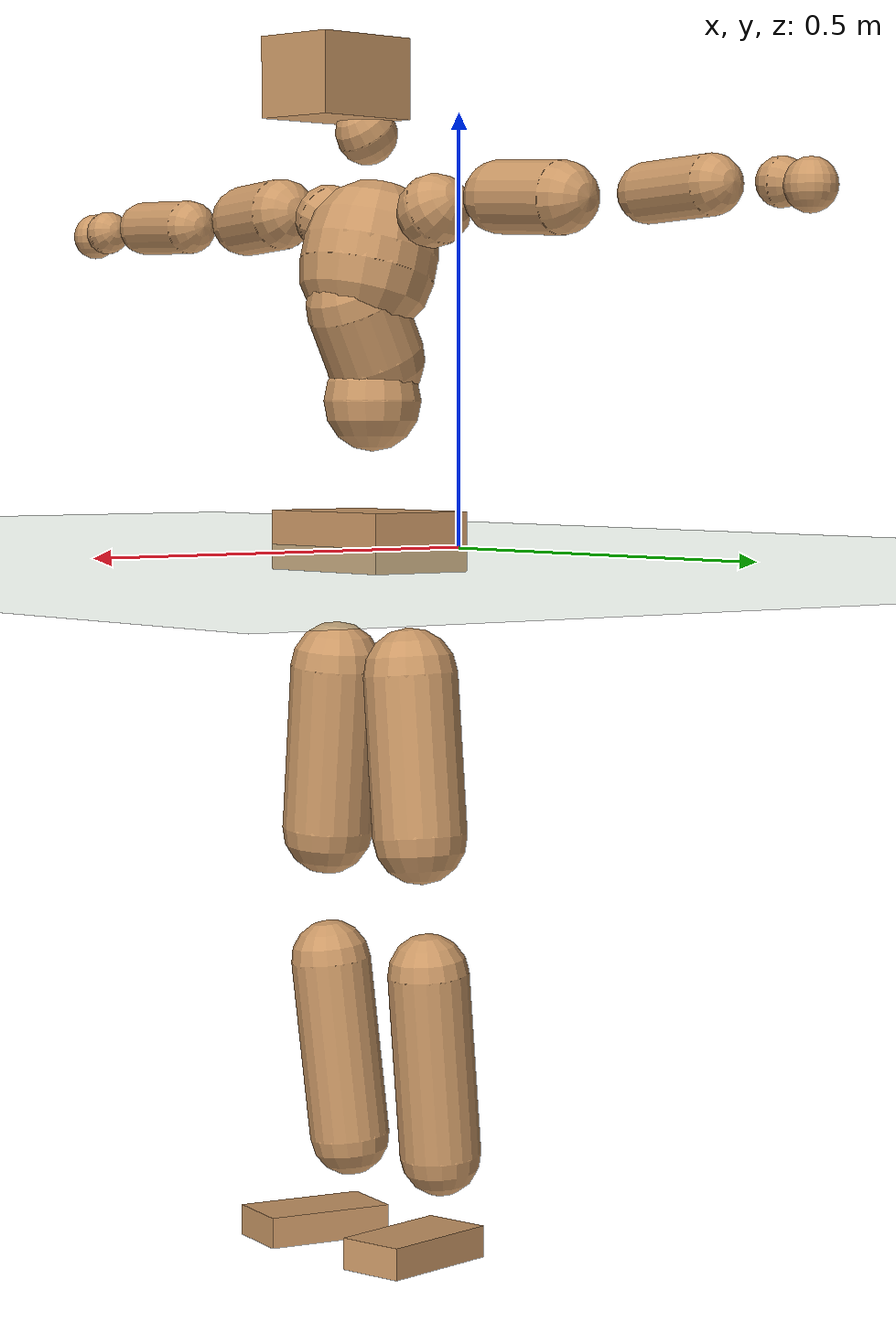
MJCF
<mujoco model="humanoid">
  <compiler coordinate="local" angle="radian"/>
  <default>
    <joint damping="0.0" armature="0.01" stiffness="0.0" limited="true"/>
    <geom conaffinity="1" condim="3" contype="7" margin="0.001" rgba="0.8 0.6 .4 1"/>
  </default>
  <asset>
    <texture type="skybox" builtin="gradient" rgb1=".4 .5 .6" rgb2="0 0 0" width="100" height="100"/>
    <texture builtin="flat" height="1278" mark="cross" markrgb="1 1 1" name="texgeom" random="0.01" rgb1="0.8 0.6 0.4" rgb2="0.8 0.6 0.4" type="cube" width="127"/>
    <texture builtin="checker" height="100" name="texplane" rgb1="0 0 0" rgb2="0.8 0.8 0.8" type="2d" width="100"/>
    <material name="MatPlane" reflectance="0.5" shininess="1" specular="1" texrepeat="60 60" texture="texplane"/>
    <material name="geom" texture="texgeom" texuniform="true"/>
  </asset>
  <worldbody>
    <light cutoff="100" diffuse="1 1 1" dir="-0 0 -1.3" directional="true" exponent="1" pos="0 0 1.3" specular=".1 .1 .1"/>
    <geom conaffinity="1" condim="3" name="floor" pos="0 0 0" rgba="0.8 0.9 0.8 1" size="100 100 .2" type="plane" material="MatPlane"/>
    <body name="Pelvis" pos="-0.002 -0.1849 0.0155">
      <freejoint name="Pelvis"/>
      <geom type="box" contype="1" conaffinity="1" density="5359.3745" pos="-0.0061 -0.0001 -0.0120" size="0.0689 0.1027 0.0358" quat="1.0000 0.0000 0.0000 0.0064" name="Pelvis"/>
      <body name="L_Hip" pos="-0.0135 0.0645 -0.0842">
        <joint name="L_Hip_x" type="hinge" pos="0 0 0" axis="1 0 0" stiffness="1600" damping="160" armature="0.02" range="-180.0000 180.0000"/>
        <joint name="L_Hip_y" type="hinge" pos="0 0 0" axis="0 1 0" stiffness="1600" damping="160" armature="0.02" range="-180.0000 180.0000"/>
        <joint name="L_Hip_z" type="hinge" pos="0 0 0" axis="0 0 1" stiffness="1600" damping="160" armature="0.02" range="-180.0000 180.0000"/>
        <geom type="capsule" contype="1" conaffinity="1" density="2040.816327" size="0.0568" fromto="-0.0002 0.0080 -0.0865 -0.0006 0.0257 -0.2788" name="L_Hip"/>
        <body name="L_Knee" pos="-0.0008 0.0336 -0.3653">
          <joint name="L_Knee_x" type="hinge" pos="0 0 0" axis="1 0 0" stiffness="1600" damping="160" armature="0.02" range="-180.0000 180.0000"/>
          <joint name="L_Knee_y" type="hinge" pos="0 0 0" axis="0 1 0" stiffness="1600" damping="160" armature="0.02" range="-180.0000 180.0000"/>
          <joint name="L_Knee_z" type="hinge" pos="0 0 0" axis="0 0 1" stiffness="1600" damping="160" armature="0.02" range="-180.0000 180.0000"/>
          <geom type="capsule" contype="1" conaffinity="1" density="1234.567901" size="0.049" fromto="-0.0083 -0.0023 -0.0785 -0.0320 -0.0089 -0.3007" name="L_Knee"/>
          <body name="L_Ankle" pos="-0.0403 -0.0112 -0.3792">
            <joint name="L_Ankle_x" type="hinge" pos="0 0 0" axis="1 0 0" stiffness="1600" damping="160" armature="0.02" range="-180.0000 180.0000"/>
            <joint name="L_Ankle_y" type="hinge" pos="0 0 0" axis="0 1 0" stiffness="1600" damping="160" armature="0.02" range="-180.0000 180.0000"/>
            <joint name="L_Ankle_z" type="hinge" pos="0 0 0" axis="0 0 1" stiffness="1600" damping="160" armature="0.02" range="-180.0000 180.0000"/>
            <geom type="box" contype="1" conaffinity="1" density="1000.000001" pos="0.0549 0.0106 -0.0263" size="0.0785 0.0419 0.0191" quat="0.9955 0.0000 0.0000 0.0950" name="L_Ankle"/>
            <body name="L_Toe" pos="0.1099 0.0212 -0.0526">
              <joint name="L_Toe_x" type="hinge" pos="0 0 0" axis="1 0 0" stiffness="1000" damping="100" armature="0.02" range="-180.0000 180.0000"/>
              <joint name="L_Toe_y" type="hinge" pos="0 0 0" axis="0 1 0" stiffness="1000" damping="100" armature="0.02" range="-180.0000 180.0000"/>
              <joint name="L_Toe_z" type="hinge" pos="0 0 0" axis="0 0 1" stiffness="1000" damping="100" armature="0.02" range="-180.0000 180.0000"/>
              <geom type="box" contype="1" conaffinity="1" density="8536473.30541" pos="0.0000 0.0000 0.0259" size="0.0009 0.0021 0.0009" quat="0.9948 0.0000 0.0000 0.1019" name="L_Toe"/>
            </body>
          </body>
        </body>
      </body>
      <body name="R_Hip" pos="-0.0099 -0.0631 -0.083">
        <joint name="R_Hip_x" type="hinge" pos="0 0 0" axis="1 0 0" stiffness="1600" damping="160" armature="0.02" range="-180.0000 180.0000"/>
        <joint name="R_Hip_y" type="hinge" pos="0 0 0" axis="0 1 0" stiffness="1600" damping="160" armature="0.02" range="-180.0000 180.0000"/>
        <joint name="R_Hip_z" type="hinge" pos="0 0 0" axis="0 0 1" stiffness="1600" damping="160" armature="0.02" range="-180.0000 180.0000"/>
        <geom type="capsule" contype="1" conaffinity="1" density="2040.816327" size="0.0561" fromto="-0.0009 -0.0088 -0.0857 -0.0029 -0.0293 -0.2861" name="R_Hip"/>
        <body name="R_Knee" pos="-0.0037 -0.0381 -0.3717">
          <joint name="R_Knee_x" type="hinge" pos="0 0 0" axis="1 0 0" stiffness="1600" damping="160" armature="0.02" range="-180.0000 180.0000"/>
          <joint name="R_Knee_y" type="hinge" pos="0 0 0" axis="0 1 0" stiffness="1600" damping="160" armature="0.02" range="-180.0000 180.0000"/>
          <joint name="R_Knee_z" type="hinge" pos="0 0 0" axis="0 0 1" stiffness="1600" damping="160" armature="0.02" range="-180.0000 180.0000"/>
          <geom type="capsule" contype="1" conaffinity="1" density="1234.567901" size="0.0493" fromto="-0.0079 0.0029 -0.0788 -0.0302 0.0112 -0.2999" name="R_Knee"/>
          <body name="R_Ankle" pos="-0.0381 0.0141 -0.3787">
            <joint name="R_Ankle_x" type="hinge" pos="0 0 0" axis="1 0 0" stiffness="1600" damping="160" armature="0.02" range="-180.0000 180.0000"/>
            <joint name="R_Ankle_y" type="hinge" pos="0 0 0" axis="0 1 0" stiffness="1600" damping="160" armature="0.02" range="-180.0000 180.0000"/>
            <joint name="R_Ankle_z" type="hinge" pos="0 0 0" axis="0 0 1" stiffness="1600" damping="160" armature="0.02" range="-180.0000 180.0000"/>
            <geom type="box" contype="1" conaffinity="1" density="1000.00002" pos="0.0563 -0.0095 -0.0225" size="0.0796 0.043 0.0187" quat="0.9965 0.0000 0.0000 -0.0836" name="R_Ankle"/>
            <body name="R_Toe" pos="0.1126 -0.019 -0.045">
              <joint name="R_Toe_x" type="hinge" pos="0 0 0" axis="1 0 0" stiffness="1000" damping="100" armature="0.02" range="-180.0000 180.0000"/>
              <joint name="R_Toe_y" type="hinge" pos="0 0 0" axis="0 1 0" stiffness="1000" damping="100" armature="0.02" range="-180.0000 180.0000"/>
              <joint name="R_Toe_z" type="hinge" pos="0 0 0" axis="0 0 1" stiffness="1000" damping="100" armature="0.02" range="-180.0000 180.0000"/>
              <geom type="box" contype="1" conaffinity="1" density="8516373.166498" pos="0.0000 0.0000 0.0239" size="0.0008 0.0021 0.001" quat="0.9973 0.0000 0.0000 -0.0736" name="R_Toe"/>
            </body>
          </body>
        </body>
      </body>
      <body name="Torso" pos="-0.013 -0.0019 0.0953">
        <joint name="Torso_x" type="hinge" pos="0 0 0" axis="1 0 0" stiffness="2000" damping="200" armature="0.02" range="-180.0000 180.0000"/>
        <joint name="Torso_y" type="hinge" pos="0 0 0" axis="0 1 0" stiffness="2000" damping="200" armature="0.02" range="-180.0000 180.0000"/>
        <joint name="Torso_z" type="hinge" pos="0 0 0" axis="0 0 1" stiffness="2000" damping="200" armature="0.02" range="-180.0000 180.0000"/>
        <geom type="capsule" contype="1" conaffinity="1" density="2040.816327" size="0.059" fromto="0.0009 0.0016 0.0587 0.0009 0.0016 0.0607" name="Torso"/>
        <body name="Spine" pos="0.0018 0.0032 0.1193">
          <joint name="Spine_x" type="hinge" pos="0 0 0" axis="1 0 0" stiffness="2000" damping="200" armature="0.02" range="-180.0000 180.0000"/>
          <joint name="Spine_y" type="hinge" pos="0 0 0" axis="0 1 0" stiffness="2000" damping="200" armature="0.02" range="-180.0000 180.0000"/>
          <joint name="Spine_z" type="hinge" pos="0 0 0" axis="0 0 1" stiffness="2000" damping="200" armature="0.02" range="-180.0000 180.0000"/>
          <geom type="capsule" contype="1" conaffinity="1" density="2040.816327" size="0.0602" fromto="0.0272 0.0028 0.0536 -0.0047 -0.0005 -0.0092" name="Spine"/>
          <body name="Chest" pos="0.0226 0.0023 0.0444">
            <joint name="Chest_x" type="hinge" pos="0 0 0" axis="1 0 0" stiffness="2000" damping="200" armature="0.02" range="-180.0000 180.0000"/>
            <joint name="Chest_y" type="hinge" pos="0 0 0" axis="0 1 0" stiffness="2000" damping="200" armature="0.02" range="-180.0000 180.0000"/>
            <joint name="Chest_z" type="hinge" pos="0 0 0" axis="0 0 1" stiffness="2000" damping="200" armature="0.02" range="-180.0000 180.0000"/>
            <geom type="capsule" contype="1" conaffinity="1" density="2040.816327" size="0.0817" fromto="-0.0204 -0.0012 0.0791 -0.0132 -0.0008 0.0511" name="Chest"/>
            <body name="Neck" pos="-0.0372 -0.0037 0.1842">
              <joint name="Neck_x" type="hinge" pos="0 0 0" axis="1 0 0" stiffness="1000" damping="100" armature="0.02" range="-180.0000 180.0000"/>
              <joint name="Neck_y" type="hinge" pos="0 0 0" axis="0 1 0" stiffness="1000" damping="100" armature="0.02" range="-180.0000 180.0000"/>
              <joint name="Neck_z" type="hinge" pos="0 0 0" axis="0 0 1" stiffness="1000" damping="100" armature="0.02" range="-180.0000 180.0000"/>
              <geom type="capsule" contype="1" conaffinity="1" density="1000" size="0.0371" fromto="0.0234 0.0022 0.0296 0.0247 0.0023 0.0312" name="Neck"/>
              <body name="Head" pos="0.0481 0.0046 0.0608">
                <joint name="Head_x" type="hinge" pos="0 0 0" axis="1 0 0" stiffness="1000" damping="100" armature="0.02" range="-180.0000 180.0000"/>
                <joint name="Head_y" type="hinge" pos="0 0 0" axis="0 1 0" stiffness="1000" damping="100" armature="0.02" range="-180.0000 180.0000"/>
                <joint name="Head_z" type="hinge" pos="0 0 0" axis="0 0 1" stiffness="1000" damping="100" armature="0.02" range="-180.0000 180.0000"/>
                <geom type="box" contype="1" conaffinity="1" density="2250.000034" pos="0.0251 0.0033 0.0314" size="0.0695 0.0543 0.0479" quat="0.9979 0.0000 0.0000 0.0651" name="Head"/>
              </body>
            </body>
            <body name="L_Thorax" pos="-0.0301 0.0661 0.1038">
              <joint name="L_Thorax_x" type="hinge" pos="0 0 0" axis="1 0 0" stiffness="1000" damping="100" armature="0.02" range="-180.0000 180.0000"/>
              <joint name="L_Thorax_y" type="hinge" pos="0 0 0" axis="0 1 0" stiffness="1000" damping="100" armature="0.02" range="-180.0000 180.0000"/>
              <joint name="L_Thorax_z" type="hinge" pos="0 0 0" axis="0 0 1" stiffness="1000" damping="100" armature="0.02" range="-180.0000 180.0000"/>
              <geom type="capsule" contype="1" conaffinity="1" density="1000" size="0.0432" fromto="-0.0028 0.0401 0.0159 -0.0025 0.0359 0.0142" name="L_Thorax"/>
              <body name="L_Shoulder" pos="-0.0053 0.076 0.0301">
                <joint name="L_Shoulder_x" type="hinge" pos="0 0 0" axis="1 0 0" stiffness="1000" damping="100" armature="0.02" range="-720.0000 720.0000"/>
                <joint name="L_Shoulder_y" type="hinge" pos="0 0 0" axis="0 1 0" stiffness="1000" damping="100" armature="0.02" range="-720.0000 720.0000"/>
                <joint name="L_Shoulder_z" type="hinge" pos="0 0 0" axis="0 0 1" stiffness="1000" damping="100" armature="0.02" range="-720.0000 720.0000"/>
                <geom type="capsule" contype="1" conaffinity="1" density="1000" size="0.0428" fromto="-0.0074 0.0723 -0.0039 -0.0175 0.1709 -0.0091" name="L_Shoulder"/>
                <body name="L_Elbow" pos="-0.025 0.2432 -0.013">
                  <joint name="L_Elbow_x" type="hinge" pos="0 0 0" axis="1 0 0" stiffness="1000" damping="100" armature="0.02" range="-720.0000 720.0000"/>
                  <joint name="L_Elbow_y" type="hinge" pos="0 0 0" axis="0 1 0" stiffness="1000" damping="100" armature="0.02" range="-720.0000 720.0000"/>
                  <joint name="L_Elbow_z" type="hinge" pos="0 0 0" axis="0 0 1" stiffness="1000" damping="100" armature="0.02" range="-720.0000 720.0000"/>
                  <geom type="capsule" contype="1" conaffinity="1" density="1000" size="0.0343" fromto="-0.0006 0.0643 0.0025 -0.0016 0.1668 0.0065" name="L_Elbow"/>
                  <body name="L_Wrist" pos="-0.0022 0.2311 0.009">
                    <joint name="L_Wrist_x" type="hinge" pos="0 0 0" axis="1 0 0" stiffness="600" damping="60" armature="0.02" range="-180.0000 180.0000"/>
                    <joint name="L_Wrist_y" type="hinge" pos="0 0 0" axis="0 1 0" stiffness="600" damping="60" armature="0.02" range="-180.0000 180.0000"/>
                    <joint name="L_Wrist_z" type="hinge" pos="0 0 0" axis="0 0 1" stiffness="600" damping="60" armature="0.02" range="-180.0000 180.0000"/>
                    <geom type="capsule" contype="1" conaffinity="1" density="1000" size="0.0276" fromto="-0.0061 0.0360 -0.0045 -0.0064 0.0379 -0.0047" name="L_Wrist"/>
                    <body name="L_Hand" pos="-0.0126 0.0739 -0.0092">
                      <joint name="L_Hand_x" type="hinge" pos="0 0 0" axis="1 0 0" stiffness="600" damping="60" armature="0.02" range="-180.0000 180.0000"/>
                      <joint name="L_Hand_y" type="hinge" pos="0 0 0" axis="0 1 0" stiffness="600" damping="60" armature="0.02" range="-180.0000 180.0000"/>
                      <joint name="L_Hand_z" type="hinge" pos="0 0 0" axis="0 0 1" stiffness="600" damping="60" armature="0.02" range="-180.0000 180.0000"/>
                      <geom type="sphere" contype="1" conaffinity="1" density="1000" size="0.0298" pos="0.0000 0.0000 0.0000" name="L_Hand"/>
                    </body>
                  </body>
                </body>
              </body>
            </body>
            <body name="R_Thorax" pos="-0.0336 -0.0683 0.1026">
              <joint name="R_Thorax_x" type="hinge" pos="0 0 0" axis="1 0 0" stiffness="1000" damping="100" armature="0.02" range="-180.0000 180.0000"/>
              <joint name="R_Thorax_y" type="hinge" pos="0 0 0" axis="0 1 0" stiffness="1000" damping="100" armature="0.02" range="-180.0000 180.0000"/>
              <joint name="R_Thorax_z" type="hinge" pos="0 0 0" axis="0 0 1" stiffness="1000" damping="100" armature="0.02" range="-180.0000 180.0000"/>
              <geom type="capsule" contype="1" conaffinity="1" density="1000" size="0.0422" fromto="-0.0036 -0.0386 0.0151 -0.0038 -0.0405 0.0158" name="R_Thorax"/>
              <body name="R_Shoulder" pos="-0.0075 -0.0791 0.0309">
                <joint name="R_Shoulder_x" type="hinge" pos="0 0 0" axis="1 0 0" stiffness="1000" damping="100" armature="0.02" range="-720.0000 720.0000"/>
                <joint name="R_Shoulder_y" type="hinge" pos="0 0 0" axis="0 1 0" stiffness="1000" damping="100" armature="0.02" range="-720.0000 720.0000"/>
                <joint name="R_Shoulder_z" type="hinge" pos="0 0 0" axis="0 0 1" stiffness="1000" damping="100" armature="0.02" range="-720.0000 720.0000"/>
                <geom type="capsule" contype="1" conaffinity="1" density="1000" size="0.044" fromto="-0.0054 -0.0737 -0.0038 -0.0118 -0.1605 -0.0082" name="R_Shoulder"/>
                <body name="R_Elbow" pos="-0.0173 -0.2342 -0.0119">
                  <joint name="R_Elbow_x" type="hinge" pos="0 0 0" axis="1 0 0" stiffness="1000" damping="100" armature="0.02" range="-720.0000 720.0000"/>
                  <joint name="R_Elbow_y" type="hinge" pos="0 0 0" axis="0 1 0" stiffness="1000" damping="100" armature="0.02" range="-720.0000 720.0000"/>
                  <joint name="R_Elbow_z" type="hinge" pos="0 0 0" axis="0 0 1" stiffness="1000" damping="100" armature="0.02" range="-720.0000 720.0000"/>
                  <geom type="capsule" contype="1" conaffinity="1" density="1000" size="0.0344" fromto="-0.0017 -0.0644 0.0018 -0.0045 -0.1732 0.0049" name="R_Elbow"/>
                  <body name="R_Wrist" pos="-0.0062 -0.2375 0.0067">
                    <joint name="R_Wrist_x" type="hinge" pos="0 0 0" axis="1 0 0" stiffness="600" damping="60" armature="0.02" range="-180.0000 180.0000"/>
                    <joint name="R_Wrist_y" type="hinge" pos="0 0 0" axis="0 1 0" stiffness="600" damping="60" armature="0.02" range="-180.0000 180.0000"/>
                    <joint name="R_Wrist_z" type="hinge" pos="0 0 0" axis="0 0 1" stiffness="600" damping="60" armature="0.02" range="-180.0000 180.0000"/>
                    <geom type="capsule" contype="1" conaffinity="1" density="1000" size="0.0282" fromto="-0.0047 -0.0361 -0.0033 -0.0049 -0.0381 -0.0035" name="R_Wrist"/>
                    <body name="R_Hand" pos="-0.0096 -0.0742 -0.0068">
                      <joint name="R_Hand_x" type="hinge" pos="0 0 0" axis="1 0 0" stiffness="600" damping="60" armature="0.02" range="-180.0000 180.0000"/>
                      <joint name="R_Hand_y" type="hinge" pos="0 0 0" axis="0 1 0" stiffness="600" damping="60" armature="0.02" range="-180.0000 180.0000"/>
                      <joint name="R_Hand_z" type="hinge" pos="0 0 0" axis="0 0 1" stiffness="600" damping="60" armature="0.02" range="-180.0000 180.0000"/>
                      <geom type="sphere" contype="1" conaffinity="1" density="1000" size="0.0298" pos="0.0000 0.0000 0.0000" name="R_Hand"/>
                    </body>
                  </body>
                </body>
              </body>
            </body>
          </body>
        </body>
      </body>
    </body>
  </worldbody>
  <actuator>
    <motor name="L_Hip_x" joint="L_Hip_x" gear="500"/>
    <motor name="L_Hip_y" joint="L_Hip_y" gear="500"/>
    <motor name="L_Hip_z" joint="L_Hip_z" gear="500"/>
    <motor name="L_Knee_x" joint="L_Knee_x" gear="500"/>
    <motor name="L_Knee_y" joint="L_Knee_y" gear="500"/>
    <motor name="L_Knee_z" joint="L_Knee_z" gear="500"/>
    <motor name="L_Ankle_x" joint="L_Ankle_x" gear="500"/>
    <motor name="L_Ankle_y" joint="L_Ankle_y" gear="500"/>
    <motor name="L_Ankle_z" joint="L_Ankle_z" gear="500"/>
    <motor name="L_Toe_x" joint="L_Toe_x" gear="500"/>
    <motor name="L_Toe_y" joint="L_Toe_y" gear="500"/>
    <motor name="L_Toe_z" joint="L_Toe_z" gear="500"/>
    <motor name="R_Hip_x" joint="R_Hip_x" gear="500"/>
    <motor name="R_Hip_y" joint="R_Hip_y" gear="500"/>
    <motor name="R_Hip_z" joint="R_Hip_z" gear="500"/>
    <motor name="R_Knee_x" joint="R_Knee_x" gear="500"/>
    <motor name="R_Knee_y" joint="R_Knee_y" gear="500"/>
    <motor name="R_Knee_z" joint="R_Knee_z" gear="500"/>
    <motor name="R_Ankle_x" joint="R_Ankle_x" gear="500"/>
    <motor name="R_Ankle_y" joint="R_Ankle_y" gear="500"/>
    <motor name="R_Ankle_z" joint="R_Ankle_z" gear="500"/>
    <motor name="R_Toe_x" joint="R_Toe_x" gear="500"/>
    <motor name="R_Toe_y" joint="R_Toe_y" gear="500"/>
    <motor name="R_Toe_z" joint="R_Toe_z" gear="500"/>
    <motor name="Torso_x" joint="Torso_x" gear="500"/>
    <motor name="Torso_y" joint="Torso_y" gear="500"/>
    <motor name="Torso_z" joint="Torso_z" gear="500"/>
    <motor name="Spine_x" joint="Spine_x" gear="500"/>
    <motor name="Spine_y" joint="Spine_y" gear="500"/>
    <motor name="Spine_z" joint="Spine_z" gear="500"/>
    <motor name="Chest_x" joint="Chest_x" gear="500"/>
    <motor name="Chest_y" joint="Chest_y" gear="500"/>
    <motor name="Chest_z" joint="Chest_z" gear="500"/>
    <motor name="Neck_x" joint="Neck_x" gear="500"/>
    <motor name="Neck_y" joint="Neck_y" gear="500"/>
    <motor name="Neck_z" joint="Neck_z" gear="500"/>
    <motor name="Head_x" joint="Head_x" gear="500"/>
    <motor name="Head_y" joint="Head_y" gear="500"/>
    <motor name="Head_z" joint="Head_z" gear="500"/>
    <motor name="L_Thorax_x" joint="L_Thorax_x" gear="500"/>
    <motor name="L_Thorax_y" joint="L_Thorax_y" gear="500"/>
    <motor name="L_Thorax_z" joint="L_Thorax_z" gear="500"/>
    <motor name="L_Shoulder_x" joint="L_Shoulder_x" gear="500"/>
    <motor name="L_Shoulder_y" joint="L_Shoulder_y" gear="500"/>
    <motor name="L_Shoulder_z" joint="L_Shoulder_z" gear="500"/>
    <motor name="L_Elbow_x" joint="L_Elbow_x" gear="500"/>
    <motor name="L_Elbow_y" joint="L_Elbow_y" gear="500"/>
    <motor name="L_Elbow_z" joint="L_Elbow_z" gear="500"/>
    <motor name="L_Wrist_x" joint="L_Wrist_x" gear="500"/>
    <motor name="L_Wrist_y" joint="L_Wrist_y" gear="500"/>
    <motor name="L_Wrist_z" joint="L_Wrist_z" gear="500"/>
    <motor name="L_Hand_x" joint="L_Hand_x" gear="500"/>
    <motor name="L_Hand_y" joint="L_Hand_y" gear="500"/>
    <motor name="L_Hand_z" joint="L_Hand_z" gear="500"/>
    <motor name="R_Thorax_x" joint="R_Thorax_x" gear="500"/>
    <motor name="R_Thorax_y" joint="R_Thorax_y" gear="500"/>
    <motor name="R_Thorax_z" joint="R_Thorax_z" gear="500"/>
    <motor name="R_Shoulder_x" joint="R_Shoulder_x" gear="500"/>
    <motor name="R_Shoulder_y" joint="R_Shoulder_y" gear="500"/>
    <motor name="R_Shoulder_z" joint="R_Shoulder_z" gear="500"/>
    <motor name="R_Elbow_x" joint="R_Elbow_x" gear="500"/>
    <motor name="R_Elbow_y" joint="R_Elbow_y" gear="500"/>
    <motor name="R_Elbow_z" joint="R_Elbow_z" gear="500"/>
    <motor name="R_Wrist_x" joint="R_Wrist_x" gear="500"/>
    <motor name="R_Wrist_y" joint="R_Wrist_y" gear="500"/>
    <motor name="R_Wrist_z" joint="R_Wrist_z" gear="500"/>
    <motor name="R_Hand_x" joint="R_Hand_x" gear="500"/>
    <motor name="R_Hand_y" joint="R_Hand_y" gear="500"/>
    <motor name="R_Hand_z" joint="R_Hand_z" gear="500"/>
  </actuator>
  <contact>
    <exclude body1="Torso" body2="Chest"/>
    <exclude body1="Head" body2="Chest"/>
    <exclude body1="R_Knee" body2="R_Toe"/>
    <exclude body1="R_Knee" body2="L_Ankle"/>
    <exclude body1="R_Knee" body2="L_Toe"/>
    <exclude body1="L_Knee" body2="L_Toe"/>
    <exclude body1="L_Knee" body2="R_Ankle"/>
    <exclude body1="L_Knee" body2="R_Toe"/>
    <exclude body1="L_Shoulder" body2="Chest"/>
    <exclude body1="R_Shoulder" body2="Chest"/>
  </contact>
  <sensor/>
  <size njmax="700" nconmax="700"/>
</mujoco>
